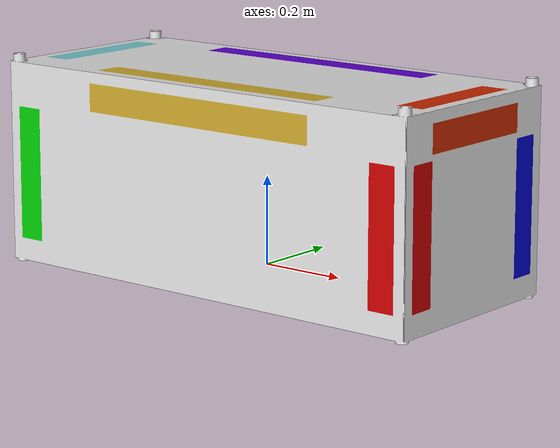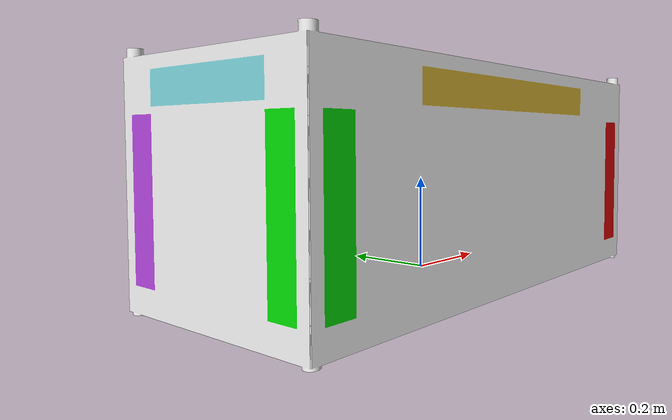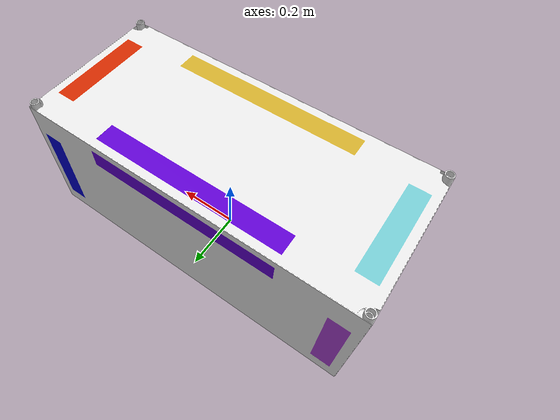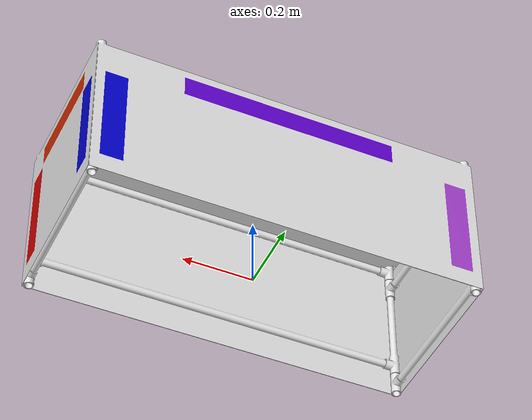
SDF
<?xml version="1.0" ?>

<sdf version="1.5">
  <model name="subway_car">
    <pose>0 0 0 0 0 0</pose>
    <link name="car">
      <inertial>
        <mass>10</mass>
        <inertia>
          <ixx>0.4166666666666667</ixx>
          <iyy>0.4166666666666667</iyy>
          <izz>0.4166666666666667</izz>
          <ixy>0</ixy>
          <ixz>0</ixz>
          <iyz>0</iyz>
        </inertia>
      </inertial>

      <collision name="subway_collision">
        <geometry>
          <mesh>
            <uri>model://subway_car/meshes/subway_car.dae</uri>
          </mesh>
        </geometry>
      </collision>

      <visual name="subway_visual">
        <geometry>
          <mesh>
            <uri>model://subway_car/meshes/subway_car.dae</uri>
          </mesh>
        </geometry>
      </visual>

      <self_collide>0</self_collide>
    </link>

    <joint name="world_joint" type="revolute">
      <child>car</child>
      <parent>world</parent>
      <axis>
        <limit>
          <lower>0</lower>
          <upper>0</upper>
        </limit>
        <xyz>0 1 0</xyz>
        <dynamics>
          <damping>1.0</damping>
        </dynamics>
        <use_parent_model_frame>true</use_parent_model_frame>
      </axis>
      <physics>
        <ode>
          <cfm_damping>1</cfm_damping>
        </ode>
      </physics>
    </joint>
  </model>
</sdf>
